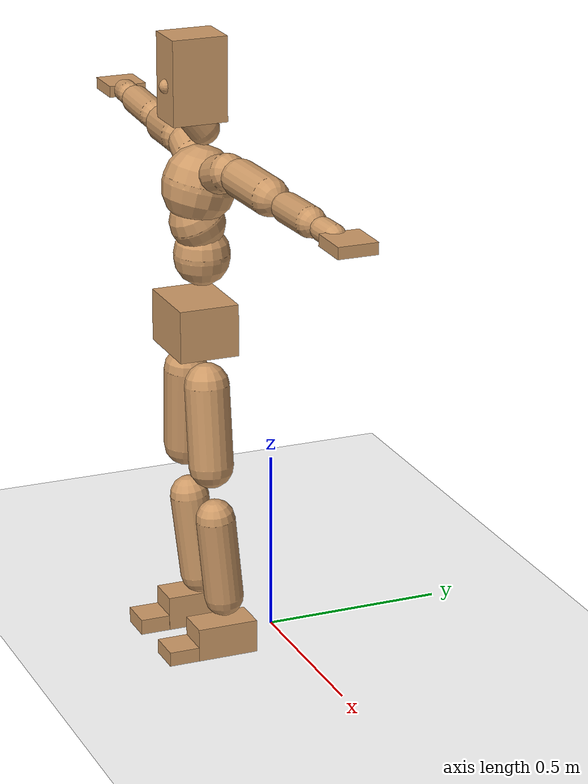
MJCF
<mujoco model="humanoid">
  <option integrator="implicitfast" />

  <visual>
    <global offwidth="1280" offheight="960" />
    <headlight active="1" ambient="0.34 0.34 0.34" diffuse="0.5 0.5 0.5" />
  </visual>

  <default>
    <joint damping="2" stiffness="2" armature="0.01" limited="true" solimplimit="0 .99 .01" />
    <geom condim="1" friction="0.7 0.005 0.0001" solimp=".99 .99 .003" solref="0.015 1" margin="0.001" rgba="0.8 0.6 .4 1" />
    <default class="smplcontact">
      <geom condim="3" friction="1. 0.005 0.0001" solref="0.015 1" solimp="0.98 0.98 0.001" priority="1" />
    </default>
    <default class="stiff_medium">
      <joint stiffness="10" />
    </default>
    <default class="stiff_medium_higher">
      <joint stiffness="50" />
    </default>
    <default class="stiff_high">
      <joint stiffness="100" />
    </default>
  </default>

  <asset>
    <texture type="skybox" builtin="gradient" rgb1="0.99 0.99 0.99" rgb2="0.608 0.828 0.892" width="100" />
    <texture builtin="flat" height="1278" mark="cross" markrgb="1 1 1" name="texgeom" random="0.01" rgb1="0.8 0.6 0.4" rgb2="0.8 0.6 0.4" type="cube" width="127" />
    <texture name="texplane" type="2d" builtin="checker" markrgb="1 1 1" rgb1="0.756 0.772 0.76" rgb2="0.6 0.6 0.6" width="100" height="100" />
    <material name="MatPlane" reflectance="0.5" texture="texplane" texrepeat="1 1" texuniform="true" />
    <material name="geom" texture="texgeom" texuniform="true" />
  </asset>

  <worldbody>
    <light name="tracking_light" pos="0 0 7" dir="0 0 -1" directional="true" cutoff="100" exponent="1" diffuse="1 1 1" specular="0.1 0.1 0.1" mode="trackcom" />
    <camera name="back" pos="0 3 2.4" xyaxes="-1 0 0 0 -1 2" mode="trackcom" />
    <camera name="side" pos="-3 0 2.4" xyaxes="0 -1 0 1 0 2" mode="trackcom" />
    <camera name="front_side" pos="-2.8 -2.8 0.8" xyaxes="0.5 -0.5 0 0.1 0.1 1" mode="trackcom" />
    <geom condim="3" name="floor" pos="0 0 0" rgba="1 1 1 1" size="100 100 .2" type="plane" material="MatPlane" />
    <body name="Pelvis" pos="-0.0018 -0.2233 0.9367" euler="90 0 0">
      <site name="Pelvis" size="0.01" />
      <freejoint name="Pelvis" />
      <geom type="box" pos="-0.0000 -0.0121 -0.0055" size="0.1069 0.0722 0.083" quat="1.0000 0.0000 0.0000 0.0000" density="3165.830099" name="Pelvis" />
      <body name="L_Hip" pos="0.0695 -0.0914 -0.0068">
        <joint name="L_Hip_x" type="hinge" pos="0 0 0" axis="1 0 0" stiffness="10.0" range="-160.0 22.92" class="stiff_medium" damping="14.999999999999998" armature="0.009999999999999998"/>
        <joint name="L_Hip_y" type="hinge" pos="0 0 0" axis="0 1 0" stiffness="10.0" range="-70.0 70.0" class="stiff_medium" damping="10.0" armature="0.01"/>
        <joint name="L_Hip_z" type="hinge" pos="0 0 0" axis="0 0 1" stiffness="10.0" range="-28.65 90.0" class="stiff_medium" damping="9.999999999999998" armature="0.009999999999999998"/>
        <geom type="capsule" density="2040.816327" fromto="0.0069 -0.075 -0.0009 0.0274 -0.3002 -0.0036" size="0.0615" name="L_Hip" />
        <body name="L_Knee" pos="0.0343 -0.3752 -0.0045">
          <joint name="L_Knee_x" type="hinge" pos="0 0 0" axis="1 0 0" range="-5.16 171.89" damping="7.999999999999998" armature="0.009999999999999995" stiffness="2.0"/>
          <joint name="L_Knee_y" type="hinge" pos="0 0 0" axis="0 1 0" range="-4.58 6.88" damping="8.000000000000002" armature="0.010000000000000005" stiffness="2.0"/>
          <joint name="L_Knee_z" type="hinge" pos="0 0 0" axis="0 0 1" range="-6.88 4.58" damping="7.999999999999997" armature="0.009999999999999993" stiffness="2.0"/>
          <geom type="capsule" density="1234.567901" fromto="-0.0027 -0.0796 -0.0087 -0.0109 -0.3184 -0.035" size="0.0541" name="L_Knee" />
          <body name="L_Ankle" pos="-0.0136 -0.398 -0.0437">
            <joint name="L_Ankle_x" type="hinge" pos="0 0 0" axis="1 0 0" range="-45.84 45.84" class="stiff_medium" damping="5.999999999999992" armature="0.009999999999999974" stiffness="10.0"/>
            <joint name="L_Ankle_y" type="hinge" pos="0 0 0" axis="0 1 0" range="-74.48 22.92" class="stiff_medium" damping="3.000000000000001" armature="0.010000000000000005" stiffness="10.0"/>
            <joint name="L_Ankle_z" type="hinge" pos="0 0 0" axis="0 0 1" range="-4.58 4.58" class="stiff_medium" damping="5.9999999999999485" armature="0.009999999999999827" stiffness="10.0"/>
            <geom type="box" pos="0.0233 -0.0239 0.0242" size="0.0483 0.0464 0.085" quat="1.0000 0.0000 0.0000 0.0000" density="449.071558" name="L_Ankle" class="smplcontact" />
            <body name="L_Toe" pos="0.0264 -0.0558 0.1193">
              <joint name="L_Toe_x" type="hinge" pos="0 0 0" axis="1 0 0" range="-91.67 22.92" armature="0.009999999999999487" damping="1.9999999999999487" stiffness="2.0"/>
              <joint name="L_Toe_y" type="hinge" pos="0 0 0" axis="0 1 0" range="-4.58 4.58" armature="0.01" damping="2.0" stiffness="2.0"/>
              <joint name="L_Toe_z" type="hinge" pos="0 0 0" axis="0 0 1" range="-4.58 4.58" armature="0.010000000000000184" damping="2.000000000000018" stiffness="2.0"/>
              <geom type="box" pos="-0.003 0.0055 0.0248" size="0.0478 0.02 0.0496" quat="1.0000 0.0000 0.0000 0.0000" density="423.206892" name="L_Toe" class="smplcontact" />
            </body>
          </body>
        </body>
      </body>
      <body name="R_Hip" pos="-0.0677 -0.0905 -0.0043">
        <joint name="R_Hip_x" type="hinge" pos="0 0 0" axis="1 0 0" stiffness="10.0" range="-160.0 22.92" class="stiff_medium" damping="14.999999999999998" armature="0.009999999999999998"/>
        <joint name="R_Hip_y" type="hinge" pos="0 0 0" axis="0 1 0" stiffness="10.0" range="-70.0 70.0" class="stiff_medium" damping="10.0" armature="0.01"/>
        <joint name="R_Hip_z" type="hinge" pos="0 0 0" axis="0 0 1" stiffness="10.0" range="-90.0 28.65" class="stiff_medium" damping="9.999999999999998" armature="0.009999999999999998"/>
        <geom type="capsule" density="2040.816327" fromto="-0.0077 -0.0765 -0.0018 -0.0306 -0.3061 -0.0071" size="0.0606" name="R_Hip" />
        <body name="R_Knee" pos="-0.0383 -0.3826 -0.0089">
          <joint name="R_Knee_x" type="hinge" pos="0 0 0" axis="1 0 0" range="-5.16 171.89" damping="7.999999999999998" armature="0.009999999999999995" stiffness="2.0"/>
          <joint name="R_Knee_y" type="hinge" pos="0 0 0" axis="0 1 0" range="-6.88 4.58" damping="8.000000000000002" armature="0.010000000000000005" stiffness="2.0"/>
          <joint name="R_Knee_z" type="hinge" pos="0 0 0" axis="0 0 1" range="-4.58 6.88" damping="7.999999999999997" armature="0.009999999999999993" stiffness="2.0"/>
          <geom type="capsule" density="1234.567901" fromto="0.0032 -0.0797 -0.0085 0.0126 -0.3187 -0.0338" size="0.0541" name="R_Knee" />
          <body name="R_Ankle" pos="0.0158 -0.3984 -0.0423">
            <joint name="R_Ankle_x" type="hinge" pos="0 0 0" axis="1 0 0" range="-45.84 45.84" class="stiff_medium" damping="5.999999999999992" armature="0.009999999999999974" stiffness="10.0"/>
            <joint name="R_Ankle_y" type="hinge" pos="0 0 0" axis="0 1 0" range="-22.92 74.48" class="stiff_medium" damping="3.000000000000001" armature="0.010000000000000005" stiffness="10.0"/>
            <joint name="R_Ankle_z" type="hinge" pos="0 0 0" axis="0 0 1" range="-4.58 4.58" class="stiff_medium" damping="5.9999999999999485" armature="0.009999999999999827" stiffness="10.0"/>
            <geom type="box" pos="-0.0212 -0.0174 0.0256" size="0.0483 0.0478 0.0865" quat="1.0000 0.0000 0.0000 0.0000" density="434.700981" name="R_Ankle" class="smplcontact" />
            <body name="R_Toe" pos="-0.0254 -0.0481 0.1233">
              <joint name="R_Toe_x" type="hinge" pos="0 0 0" axis="1 0 0" range="-91.67 22.92" armature="0.009999999999999487" damping="1.9999999999999487" stiffness="2.0"/>
              <joint name="R_Toe_y" type="hinge" pos="0 0 0" axis="0 1 0" range="-4.58 4.58" armature="0.01" damping="2.0" stiffness="2.0"/>
              <joint name="R_Toe_z" type="hinge" pos="0 0 0" axis="0 0 1" range="-4.58 4.58" armature="0.010000000000000184" damping="2.000000000000018" stiffness="2.0"/>
              <geom type="box" pos="0.0042 0.0045 0.0227" size="0.0479 0.0216 0.0493" quat="1.0000 0.0000 0.0000 0.0000" density="407.384095" name="R_Toe" class="smplcontact" />
            </body>
          </body>
        </body>
      </body>
      <body name="Torso" pos="-0.0025 0.109 -0.0267">
        <joint name="Torso_x" type="hinge" pos="0 0 0" axis="1 0 0" range="-25.78 57.3" class="stiff_medium" damping="15.053069587830326" armature="0.01005540911976875" stiffness="10.015390227272727"/>
        <joint name="Torso_y" type="hinge" pos="0 0 0" axis="0 1 0" range="-57.3 57.3" class="stiff_high" damping="20.030199456725096" armature="0.010001201497758674" stiffness="100.29017272727272"/>
        <joint name="Torso_z" type="hinge" pos="0 0 0" axis="0 0 1" range="-34.38 34.38" class="stiff_high" damping="20.048644085562962" armature="0.010037158000749107" stiffness="100.115025"/>
        <geom type="capsule" density="2040.816327" fromto="0.0025 0.0608 0.0005 0.003 0.0743 0.0006" size="0.0769" name="Torso" />
        <body name="Spine" pos="0.0055 0.1352 0.0011">
          <joint name="Spine_x" type="hinge" pos="0 0 0" axis="1 0 0" stiffness="10.027353409090908" range="-25.78 57.3" class="stiff_medium" damping="15.094238746539132" armature="0.010098423738986005"/>
          <joint name="Spine_y" type="hinge" pos="0 0 0" axis="0 1 0" stiffness="10.027070227272727" range="-57.3 57.3" class="stiff_high" damping="8.01127996632614" armature="0.010001146465914634"/>
          <joint name="Spine_z" type="hinge" pos="0 0 0" axis="0 0 1" stiffness="20.061542727272727" range="-34.38 34.38" class="stiff_high" damping="12.046050259237974" armature="0.010045984832547069"/>
          <geom type="capsule" density="2040.816327" fromto="0.0007 0.0238 0.0114 0.0008 0.0291 0.014" size="0.0755" name="Spine" />
          <body name="Chest" pos="0.0015 0.0529 0.0254">
            <joint name="Chest_x" type="hinge" pos="0 0 0" axis="1 0 0" stiffness="10.051994090909094" range="-25.78 57.3" class="stiff_medium" damping="15.131930425612094" armature="0.010124041783141103"/>
            <joint name="Chest_y" type="hinge" pos="0 0 0" axis="0 1 0" stiffness="10.01906409090909" range="-57.3 57.3" class="stiff_high" damping="8.007566832380434" armature="0.009999862199145585"/>
            <joint name="Chest_z" type="hinge" pos="0 0 0" axis="0 0 1" stiffness="20.083234545454545" range="-34.38 34.38" class="stiff_high" damping="12.053605090376637" armature="0.010047725473171756"/>
            <geom type="capsule" density="2040.816327" fromto="-0.0009 0.0682 -0.0173 -0.001 0.0833 -0.0212" size="0.1002" name="Chest" />
            <body name="Neck" pos="-0.0028 0.2139 -0.0429">
              <joint name="Neck_x" type="hinge" pos="0 0 0" axis="1 0 0" range="-28.65 57.3" class="stiff_medium_higher" damping="10.313468896351377" armature="0.010396994026161718" stiffness="51.153073863636365"/>
              <joint name="Neck_y" type="hinge" pos="0 0 0" axis="0 1 0" range="-40.11 40.11" class="stiff_medium_higher" damping="10.197424204323127" armature="0.010160017945892863" stiffness="51.1748409090909"/>
              <joint name="Neck_z" type="hinge" pos="0 0 0" axis="0 0 1" range="-40.11 40.11" class="stiff_medium_higher" damping="10.322317793253102" armature="0.010402437441340028" stiffness="51.21407613636364"/>
              <geom type="capsule" density="1000" fromto="0.001 0.013 0.0103 0.0041 0.052 0.0411" size="0.0436" name="Neck" />
              <body name="Head" pos="0.00533 0.066625 0.0525825">
                <joint name="Head_x" type="hinge" pos="0 0 0" axis="1 0 0" range="-28.65 57.3" class="stiff_medium_higher" damping="2.0528893334510165" armature="0.010278913696090144" stiffness="51.24999999999999"/>
                <joint name="Head_y" type="hinge" pos="0 0 0" axis="0 1 0" range="-40.11 40.11" class="stiff_medium_higher" damping="2.027207004798934" armature="0.010023337171477723" stiffness="51.24999999999999"/>
                <joint name="Head_z" type="hinge" pos="0 0 0" axis="0 0 1" range="-40.11 40.11" class="stiff_medium_higher" damping="2.054152631593999" armature="0.010291568375328177" stiffness="51.24999999999999"/>
                <geom type="box" pos="-0.004305 0.08979 -0.01189" size="0.0606 0.1154 0.076" quat="1.0000 0.0000 0.0000 0.0000" density="1018.069894" name="Head" />
                <geom type="capsule" name="nose" size="0.02 0.01" pos="0 0.07175 0.05125" quat="1 0 0 0" mass="0" contype="0" conaffinity="0" />
              </body>
            </body>
            <body name="L_Thorax" pos="0.0788 0.1217 -0.0341">
              <joint name="L_Thorax_x" type="hinge" pos="0 0 0" axis="1 0 0" range="-10.89 4.58" class="stiff_medium_higher" damping="20.00000000000002" armature="0.010000000000000023" stiffness="50.0"/>
              <joint name="L_Thorax_y" type="hinge" pos="0 0 0" axis="0 1 0" range="-28.65 17.19" class="stiff_medium_higher" damping="20.0" armature="0.010000000000000002" stiffness="50.0"/>
              <joint name="L_Thorax_z" type="hinge" pos="0 0 0" axis="0 0 1" range="-31.51 40.11" class="stiff_medium_higher" damping="19.999999999999996" armature="0.009999999999999998" stiffness="50.0"/>
              <geom type="capsule" density="1000" fromto="0.0182 0.0061 -0.0018 0.0728 0.0244 -0.0071" size="0.0521" name="L_Thorax" />
              <body name="L_Shoulder" pos="0.091 0.0305 -0.0089">
                <joint name="L_Shoulder_x" type="hinge" pos="0 0 0" axis="1 0 0" range="-97.4 97.4" class="stiff_medium" damping="6.0000000000000675" armature="0.010000000000000227" stiffness="10.0"/>
                <joint name="L_Shoulder_y" type="hinge" pos="0 0 0" axis="0 1 0" range="-108.86 80.21" class="stiff_medium" damping="6.0" armature="0.01" stiffness="10.0"/>
                <joint name="L_Shoulder_z" type="hinge" pos="0 0 0" axis="0 0 1" range="-97.4 85.94" class="stiff_medium" damping="6.000000000000002" armature="0.010000000000000005" stiffness="10.0"/>
                <geom type="capsule" density="1000" fromto="0.0519 -0.0026 -0.0055 0.2077 -0.0102 -0.022" size="0.0517" name="L_Shoulder" />
                <body name="L_Elbow" pos="0.2596 -0.0128 -0.0275">
                  <joint name="L_Elbow_x" type="hinge" pos="0 0 0" axis="1 0 0" range="-17.19 4.58" damping="4.999999999999936" armature="0.009999999999999745" stiffness="2.0"/>
                  <joint name="L_Elbow_y" type="hinge" pos="0 0 0" axis="0 1 0" range="-180.0 17.19" damping="5.000000000000002" armature="0.010000000000000009" stiffness="2.0"/>
                  <joint name="L_Elbow_z" type="hinge" pos="0 0 0" axis="0 0 1" range="-100.84 4.58" damping="4.999999999999999" armature="0.009999999999999998" stiffness="2.0"/>
                  <geom type="capsule" density="1000" fromto="0.0498 0.0018 -0.0002 0.1994 0.0072 -0.0009" size="0.0405" name="L_Elbow" />
                  <body name="L_Wrist" pos="0.2492 0.009 -0.0012">
                    <joint name="L_Wrist_x" type="hinge" pos="0 0 0" axis="1 0 0" range="-180.0 22.92" armature="0.009999999999999702" damping="1.9999999999999702" stiffness="2.0"/>
                    <joint name="L_Wrist_y" type="hinge" pos="0 0 0" axis="0 1 0" range="-17.19 17.19" armature="0.009999999999999848" damping="1.9999999999999847" stiffness="2.0"/>
                    <joint name="L_Wrist_z" type="hinge" pos="0 0 0" axis="0 0 1" range="-22.92 22.92" armature="0.009999999999999924" damping="1.9999999999999925" stiffness="2.0"/>
                    <geom type="capsule" density="1000" fromto="0.0168 -0.0016 -0.003 0.0672 -0.0065 -0.012" size="0.0318" name="L_Wrist" class="smplcontact" />
                    <body name="L_Hand" pos="0.084 -0.0082 -0.0149">
                      <joint name="L_Hand_x" type="hinge" pos="0 0 0" axis="1 0 0" range="-17.19 17.19" armature="0.009999999999999419" damping="1.9999999999999418" stiffness="2.0"/>
                      <joint name="L_Hand_y" type="hinge" pos="0 0 0" axis="0 1 0" range="-51.57 51.57" armature="0.010000000000000299" damping="2.0000000000000298" stiffness="2.0"/>
                      <joint name="L_Hand_z" type="hinge" pos="0 0 0" axis="0 0 1" range="-91.67 91.67" armature="0.010000000000000508" damping="2.0000000000000506" stiffness="2.0"/>
                      <geom type="box" pos="0.0493 0.001 -0.0058" size="0.0585 0.0158 0.0538" quat="1.0000 0.0000 0.0000 0.0000" density="400.552564" name="L_Hand" class="smplcontact" />
                    </body>
                  </body>
                </body>
              </body>
            </body>
            <body name="R_Thorax" pos="-0.0818 0.1188 -0.0386">
              <joint name="R_Thorax_x" type="hinge" pos="0 0 0" axis="1 0 0" range="-10.89 4.58" class="stiff_medium_higher" damping="20.00000000000002" armature="0.010000000000000023" stiffness="50.0"/>
              <joint name="R_Thorax_y" type="hinge" pos="0 0 0" axis="0 1 0" range="-17.19 28.65" class="stiff_medium_higher" damping="20.0" armature="0.010000000000000002" stiffness="50.0"/>
              <joint name="R_Thorax_z" type="hinge" pos="0 0 0" axis="0 0 1" range="-40.11 31.51" class="stiff_medium_higher" damping="19.999999999999996" armature="0.009999999999999998" stiffness="50.0"/>
              <geom type="capsule" density="1000" fromto="-0.0192 0.0065 -0.0018 -0.0768 0.026 -0.0073" size="0.0511" name="R_Thorax" />
              <body name="R_Shoulder" pos="-0.096 0.0326 -0.0091">
                <joint name="R_Shoulder_x" type="hinge" pos="0 0 0" axis="1 0 0" range="-97.4 97.4" class="stiff_medium" damping="6.0000000000000675" armature="0.010000000000000227" stiffness="10.0"/>
                <joint name="R_Shoulder_y" type="hinge" pos="0 0 0" axis="0 1 0" range="-80.21 108.86" class="stiff_medium" damping="6.0" armature="0.01" stiffness="10.0"/>
                <joint name="R_Shoulder_z" type="hinge" pos="0 0 0" axis="0 0 1" range="-85.94 97.4" class="stiff_medium" damping="6.000000000000002" armature="0.010000000000000005" stiffness="10.0"/>
                <geom type="capsule" density="1000" fromto="-0.0507 -0.0027 -0.0043 -0.203 -0.0107 -0.0171" size="0.0531" name="R_Shoulder" />
                <body name="R_Elbow" pos="-0.2537 -0.0133 -0.0214">
                  <joint name="R_Elbow_x" type="hinge" pos="0 0 0" axis="1 0 0" range="-17.19 4.58" damping="4.999999999999936" armature="0.009999999999999745" stiffness="2.0"/>
                  <joint name="R_Elbow_y" type="hinge" pos="0 0 0" axis="0 1 0" range="-17.19 180.0" damping="5.000000000000002" armature="0.010000000000000009" stiffness="2.0"/>
                  <joint name="R_Elbow_z" type="hinge" pos="0 0 0" axis="0 0 1" range="-4.58 100.84" damping="4.999999999999999" armature="0.009999999999999998" stiffness="2.0"/>
                  <geom type="capsule" density="1000" fromto="-0.0511 0.0016 -0.0011 -0.2042 0.0062 -0.0044" size="0.0408" name="R_Elbow" />
                  <body name="R_Wrist" pos="-0.2553 0.0078 -0.0056">
                    <joint name="R_Wrist_x" type="hinge" pos="0 0 0" axis="1 0 0" range="-180.0 22.92" armature="0.009999999999999702" damping="1.9999999999999702" stiffness="2.0"/>
                    <joint name="R_Wrist_y" type="hinge" pos="0 0 0" axis="0 1 0" range="-17.19 17.19" armature="0.009999999999999848" damping="1.9999999999999847" stiffness="2.0"/>
                    <joint name="R_Wrist_z" type="hinge" pos="0 0 0" axis="0 0 1" range="-22.92 22.92" armature="0.009999999999999924" damping="1.9999999999999925" stiffness="2.0"/>
                    <geom type="capsule" density="1000" fromto="-0.0169 -0.0012 -0.0021 -0.0677 -0.0049 -0.0083" size="0.0326" name="R_Wrist" class="smplcontact" />
                    <body name="R_Hand" pos="-0.0846 -0.0061 -0.0103">
                      <joint name="R_Hand_x" type="hinge" pos="0 0 0" axis="1 0 0" range="-17.19 17.19" armature="0.009999999999999419" damping="1.9999999999999418" stiffness="2.0"/>
                      <joint name="R_Hand_y" type="hinge" pos="0 0 0" axis="0 1 0" range="-51.57 51.57" armature="0.010000000000000299" damping="2.0000000000000298" stiffness="2.0"/>
                      <joint name="R_Hand_z" type="hinge" pos="0 0 0" axis="0 0 1" range="-91.67 91.67" armature="0.010000000000000508" damping="2.0000000000000506" stiffness="2.0"/>
                      <geom type="box" pos="-0.0462 -0.0009 -0.0079" size="0.0569 0.0164 0.0546" quat="1.0000 0.0000 0.0000 0.0000" density="403.679611" name="R_Hand" class="smplcontact" />
                    </body>
                  </body>
                </body>
              </body>
            </body>
          </body>
        </body>
      </body>
    </body>
  </worldbody>
  <actuator>
    <general name="L_Hip_x" joint="L_Hip_x" biastype="affine" gainprm="287.33006409732246" biasprm="-215.3247604770444 -180.0 -1.9999999999999998" ctrllimited="true" ctrlrange="-1 1" forcerange="-360.0 360.0" />
    <general name="L_Hip_y" joint="L_Hip_y" biastype="affine" gainprm="219.9114857512855" biasprm="0.0 -180.0 -2.0" ctrllimited="true" ctrlrange="-1 1" forcerange="-360.0 360.0" />
    <general name="L_Hip_z" joint="L_Hip_z" biastype="affine" gainprm="186.3749841742145" biasprm="96.3683546488669 -180.0 -1.9999999999999998" ctrllimited="true" ctrlrange="-1 1" forcerange="-360.0 360.0" />
    <general name="L_Knee_x" joint="L_Knee_x" biastype="affine" gainprm="278.10948965903646" biasprm="261.8988715665131 -180.0 -1.9999999999999996" ctrllimited="true" ctrlrange="-1 1" forcerange="-360.0 360.0" />
    <general name="L_Knee_y" joint="L_Knee_y" biastype="affine" gainprm="18.001325905069514" biasprm="3.612831551628262 -180.0 -2.0000000000000004" ctrllimited="true" ctrlrange="-1 1" forcerange="-360.0 360.0" />
    <general name="L_Knee_z" joint="L_Knee_z" biastype="affine" gainprm="18.001325905069514" biasprm="-3.612831551628262 -180.0 -1.9999999999999993" ctrllimited="true" ctrlrange="-1 1" forcerange="-360.0 360.0" />
    <general name="L_Ankle_x" joint="L_Ankle_x" biastype="affine" gainprm="72.00530362027807" biasprm="0.0 -90.0 -1.9999999999999973" ctrllimited="true" ctrlrange="-1 1" forcerange="-180.0 180.0" />
    <general name="L_Ankle_y" joint="L_Ankle_y" biastype="affine" gainprm="76.49778111491148" biasprm="-40.49512930477244 -90.0 -2.0000000000000004" ctrllimited="true" ctrlrange="-1 1" forcerange="-180.0 180.0" />
    <general name="L_Ankle_z" joint="L_Ankle_z" biastype="affine" gainprm="7.1942471767206255" biasprm="0.0 -90.0 -1.9999999999999827" ctrllimited="true" ctrlrange="-1 1" forcerange="-180.0 180.0" />
    <general name="L_Toe_x" joint="L_Toe_x" biastype="affine" gainprm="71.99902043497087" biasprm="-43.19689898685965 -72.0 -0.7999999999999795" ctrllimited="true" ctrlrange="-1 1" forcerange="-144.0 144.0" />
    <general name="L_Toe_y" joint="L_Toe_y" biastype="affine" gainprm="5.755397741376501" biasprm="0.0 -72.0 -0.8" ctrllimited="true" ctrlrange="-1 1" forcerange="-144.0 144.0" />
    <general name="L_Toe_z" joint="L_Toe_z" biastype="affine" gainprm="5.755397741376501" biasprm="0.0 -72.0 -0.8000000000000074" ctrllimited="true" ctrlrange="-1 1" forcerange="-144.0 144.0" />
    <general name="R_Hip_x" joint="R_Hip_x" biastype="affine" gainprm="287.33006409732246" biasprm="-215.3247604770444 -180.0 -1.9999999999999998" ctrllimited="true" ctrlrange="-1 1" forcerange="-360.0 360.0" />
    <general name="R_Hip_y" joint="R_Hip_y" biastype="affine" gainprm="219.9114857512855" biasprm="0.0 -180.0 -2.0" ctrllimited="true" ctrlrange="-1 1" forcerange="-360.0 360.0" />
    <general name="R_Hip_z" joint="R_Hip_z" biastype="affine" gainprm="186.3749841742145" biasprm="-96.3683546488669 -180.0 -1.9999999999999998" ctrllimited="true" ctrlrange="-1 1" forcerange="-360.0 360.0" />
    <general name="R_Knee_x" joint="R_Knee_x" biastype="affine" gainprm="278.10948965903646" biasprm="261.8988715665131 -180.0 -1.9999999999999996" ctrllimited="true" ctrlrange="-1 1" forcerange="-360.0 360.0" />
    <general name="R_Knee_y" joint="R_Knee_y" biastype="affine" gainprm="18.001325905069514" biasprm="-3.612831551628262 -180.0 -2.0000000000000004" ctrllimited="true" ctrlrange="-1 1" forcerange="-360.0 360.0" />
    <general name="R_Knee_z" joint="R_Knee_z" biastype="affine" gainprm="18.001325905069514" biasprm="3.612831551628262 -180.0 -1.9999999999999993" ctrllimited="true" ctrlrange="-1 1" forcerange="-360.0 360.0" />
    <general name="R_Ankle_x" joint="R_Ankle_x" biastype="affine" gainprm="72.00530362027807" biasprm="0.0 -90.0 -1.9999999999999973" ctrllimited="true" ctrlrange="-1 1" forcerange="-180.0 180.0" />
    <general name="R_Ankle_y" joint="R_Ankle_y" biastype="affine" gainprm="76.49778111491148" biasprm="40.49512930477244 -90.0 -2.0000000000000004" ctrllimited="true" ctrlrange="-1 1" forcerange="-180.0 180.0" />
    <general name="R_Ankle_z" joint="R_Ankle_z" biastype="affine" gainprm="7.1942471767206255" biasprm="0.0 -90.0 -1.9999999999999827" ctrllimited="true" ctrlrange="-1 1" forcerange="-180.0 180.0" />
    <general name="R_Toe_x" joint="R_Toe_x" biastype="affine" gainprm="71.99902043497087" biasprm="-43.19689898685965 -72.0 -0.7999999999999795" ctrllimited="true" ctrlrange="-1 1" forcerange="-144.0 144.0" />
    <general name="R_Toe_y" joint="R_Toe_y" biastype="affine" gainprm="5.755397741376501" biasprm="0.0 -72.0 -0.8" ctrllimited="true" ctrlrange="-1 1" forcerange="-144.0 144.0" />
    <general name="R_Toe_z" joint="R_Toe_z" biastype="affine" gainprm="5.755397741376501" biasprm="0.0 -72.0 -0.8000000000000074" ctrllimited="true" ctrlrange="-1 1" forcerange="-144.0 144.0" />
    <general name="Torso_x" joint="Torso_x" biastype="affine" gainprm="174.27013867054484" biasprm="66.11693272623461 -240.36936545454546 -4.014151890088087" ctrllimited="true" ctrlrange="-1 1" forcerange="-360.5540481818182 360.5540481818182" />
    <general name="Torso_y" joint="Torso_y" biastype="affine" gainprm="240.71414457858006" biasprm="0.0 -240.69641454545453 -4.0060398913450195" ctrllimited="true" ctrlrange="-1 1" forcerange="-361.0446218181818 361.0446218181818" />
    <general name="Torso_z" joint="Torso_z" biastype="affine" gainprm="144.17625544153458" biasprm="0.0 -240.27606 -4.009728817112593" ctrllimited="true" ctrlrange="-1 1" forcerange="-360.41409 360.41409" />
    <general name="Spine_x" joint="Spine_x" biastype="affine" gainprm="174.47830083967514" biasprm="66.1959080701319 -240.65648181818182 -4.025130332410435" ctrllimited="true" ctrlrange="-1 1" forcerange="-360.9847227272727 360.9847227272727" />
    <general name="Spine_y" joint="Spine_y" biastype="affine" gainprm="240.66741204554108" biasprm="0.0 -240.64968545454545 -4.00563998316307" ctrllimited="true" ctrlrange="-1 1" forcerange="-360.9745281818182 360.9745281818182" />
    <general name="Spine_z" joint="Spine_z" biastype="affine" gainprm="144.45374751684543" biasprm="0.0 -240.73851272727273 -4.015350086412658" ctrllimited="true" ctrlrange="-1 1" forcerange="-361.1077690909091 361.1077690909091" />
    <general name="Chest_x" joint="Chest_x" biastype="affine" gainprm="174.90705448181467" biasprm="66.3585743532354 -241.24785818181823 -4.035181446829892" ctrllimited="true" ctrlrange="-1 1" forcerange="-361.8717872727274 361.8717872727274" />
    <general name="Chest_y" joint="Chest_y" biastype="affine" gainprm="240.4752506189781" biasprm="0.0 -240.4575381818182 -4.003783416190217" ctrllimited="true" ctrlrange="-1 1" forcerange="-360.6863072727273 360.6863072727273" />
    <general name="Chest_z" joint="Chest_z" biastype="affine" gainprm="144.60994011227118" biasprm="0.0 -240.99881454545454 -4.017868363458879" ctrllimited="true" ctrlrange="-1 1" forcerange="-361.49822181818183 361.49822181818183" />
    <general name="Neck_x" joint="Neck_x" biastype="affine" gainprm="27.624694609962347" biasprm="9.208231536654116 -36.83021318181818 -0.8250775117081102" ctrllimited="true" ctrlrange="-1 1" forcerange="-73.66042636363636 73.66042636363636" />
    <general name="Neck_y" joint="Neck_y" biastype="affine" gainprm="25.794019701649617" biasprm="0.0 -36.84588545454545 -0.8157939363458502" ctrllimited="true" ctrlrange="-1 1" forcerange="-73.6917709090909 73.6917709090909" />
    <general name="Neck_z" joint="Neck_z" biastype="affine" gainprm="25.813795712816304" biasprm="0.0 -36.87413481818182 -0.8257854234602482" ctrllimited="true" ctrlrange="-1 1" forcerange="-73.74826963636364 73.74826963636364" />
    <general name="Head_x" joint="Head_x" biastype="affine" gainprm="18.45135905269625" biasprm="6.150453017565416 -24.599999999999998 -0.8211557333804067" ctrllimited="true" ctrlrange="-1 1" forcerange="-49.199999999999996 49.199999999999996" />
    <general name="Head_y" joint="Head_y" biastype="affine" gainprm="17.221268449183167" biasprm="0.0 -24.599999999999998 -0.8108828019195736" ctrllimited="true" ctrlrange="-1 1" forcerange="-49.199999999999996 49.199999999999996" />
    <general name="Head_z" joint="Head_z" biastype="affine" gainprm="17.221268449183167" biasprm="0.0 -24.599999999999998 -0.8216610526375997" ctrllimited="true" ctrlrange="-1 1" forcerange="-49.199999999999996 49.199999999999996" />
    <general name="L_Thorax_x" joint="L_Thorax_x" biastype="affine" gainprm="16.200146117011364" biasprm="-6.6078165480505335 -120.0 -1.6000000000000019" ctrllimited="true" ctrlrange="-1 1" forcerange="-240.0 240.0" />
    <general name="L_Thorax_y" joint="L_Thorax_y" biastype="affine" gainprm="48.00353574685204" biasprm="-12.00088393671301 -120.0 -1.6" ctrllimited="true" ctrlrange="-1 1" forcerange="-240.0 240.0" />
    <general name="L_Thorax_z" joint="L_Thorax_z" biastype="affine" gainprm="75.00028861670033" biasprm="9.00589894029074 -120.0 -1.5999999999999999" ctrllimited="true" ctrlrange="-1 1" forcerange="-240.0 240.0" />
    <general name="L_Shoulder_x" joint="L_Shoulder_x" biastype="affine" gainprm="81.5976331892389" biasprm="0.0 -48.0 -1.6000000000000183" ctrllimited="true" ctrlrange="-1 1" forcerange="-96.0 96.0" />
    <general name="L_Shoulder_y" joint="L_Shoulder_y" biastype="affine" gainprm="79.19745640189629" biasprm="-12.00088393671301 -48.0 -1.6" ctrllimited="true" ctrlrange="-1 1" forcerange="-96.0 96.0" />
    <general name="L_Shoulder_z" joint="L_Shoulder_z" biastype="affine" gainprm="76.79727961455369" biasprm="-4.800353574685214 -48.0 -1.6000000000000005" ctrllimited="true" ctrlrange="-1 1" forcerange="-96.0 96.0" />
    <general name="L_Elbow_x" joint="L_Elbow_x" biastype="affine" gainprm="13.67849441372996" biasprm="-7.923096672353461 -72.0 -0.7999999999999898" ctrllimited="true" ctrlrange="-1 1" forcerange="-144.0 144.0" />
    <general name="L_Elbow_y" joint="L_Elbow_y" biastype="affine" gainprm="123.89813107227425" biasprm="-102.29653998619085 -72.0 -0.8000000000000004" ctrllimited="true" ctrlrange="-1 1" forcerange="-144.0 144.0" />
    <general name="L_Elbow_z" joint="L_Elbow_z" biastype="affine" gainprm="66.23733950828719" biasprm="-60.4819417669107 -72.0 -0.7999999999999999" ctrllimited="true" ctrlrange="-1 1" forcerange="-144.0 144.0" />
    <general name="L_Wrist_x" joint="L_Wrist_x" biastype="affine" gainprm="21.24973270888136" biasprm="-16.449379134196157 -12.0 -0.7999999999999882" ctrllimited="true" ctrlrange="-1 1" forcerange="-24.0 24.0" />
    <general name="L_Wrist_y" joint="L_Wrist_y" biastype="affine" gainprm="3.6002651810139037" biasprm="0.0 -12.0 -0.7999999999999939" ctrllimited="true" ctrlrange="-1 1" forcerange="-24.0 24.0" />
    <general name="L_Wrist_z" joint="L_Wrist_z" biastype="affine" gainprm="4.800353574685205" biasprm="0.0 -12.0 -0.799999999999997" ctrllimited="true" ctrlrange="-1 1" forcerange="-24.0 24.0" />
    <general name="L_Hand_x" joint="L_Hand_x" biastype="affine" gainprm="3.6002651810139037" biasprm="0.0 -12.0 -0.7999999999999767" ctrllimited="true" ctrlrange="-1 1" forcerange="-24.0 24.0" />
    <general name="L_Hand_y" joint="L_Hand_y" biastype="affine" gainprm="10.800795543041708" biasprm="0.0 -12.0 -0.8000000000000119" ctrllimited="true" ctrlrange="-1 1" forcerange="-24.0 24.0" />
    <general name="L_Hand_z" joint="L_Hand_z" biastype="affine" gainprm="19.199319903638422" biasprm="0.0 -12.0 -0.8000000000000203" ctrllimited="true" ctrlrange="-1 1" forcerange="-24.0 24.0" />
    <general name="R_Thorax_x" joint="R_Thorax_x" biastype="affine" gainprm="16.200146117011364" biasprm="-6.6078165480505335 -120.0 -1.6000000000000019" ctrllimited="true" ctrlrange="-1 1" forcerange="-240.0 240.0" />
    <general name="R_Thorax_y" joint="R_Thorax_y" biastype="affine" gainprm="48.00353574685204" biasprm="12.000883936713002 -120.0 -1.6" ctrllimited="true" ctrlrange="-1 1" forcerange="-240.0 240.0" />
    <general name="R_Thorax_z" joint="R_Thorax_z" biastype="affine" gainprm="75.00028861670033" biasprm="-9.00589894029074 -120.0 -1.5999999999999999" ctrllimited="true" ctrlrange="-1 1" forcerange="-240.0 240.0" />
    <general name="R_Shoulder_x" joint="R_Shoulder_x" biastype="affine" gainprm="81.5976331892389" biasprm="0.0 -48.0 -1.6000000000000183" ctrllimited="true" ctrlrange="-1 1" forcerange="-96.0 96.0" />
    <general name="R_Shoulder_y" joint="R_Shoulder_y" biastype="affine" gainprm="79.19745640189629" biasprm="12.00088393671301 -48.0 -1.6" ctrllimited="true" ctrlrange="-1 1" forcerange="-96.0 96.0" />
    <general name="R_Shoulder_z" joint="R_Shoulder_z" biastype="affine" gainprm="76.79727961455369" biasprm="4.800353574685204 -48.0 -1.6000000000000005" ctrllimited="true" ctrlrange="-1 1" forcerange="-96.0 96.0" />
    <general name="R_Elbow_x" joint="R_Elbow_x" biastype="affine" gainprm="13.67849441372996" biasprm="-7.923096672353461 -72.0 -0.7999999999999898" ctrllimited="true" ctrlrange="-1 1" forcerange="-144.0 144.0" />
    <general name="R_Elbow_y" joint="R_Elbow_y" biastype="affine" gainprm="123.89813107227425" biasprm="102.29653998619085 -72.0 -0.8000000000000004" ctrllimited="true" ctrlrange="-1 1" forcerange="-144.0 144.0" />
    <general name="R_Elbow_z" joint="R_Elbow_z" biastype="affine" gainprm="66.23733950828719" biasprm="60.481941766910694 -72.0 -0.7999999999999999" ctrllimited="true" ctrlrange="-1 1" forcerange="-144.0 144.0" />
    <general name="R_Wrist_x" joint="R_Wrist_x" biastype="affine" gainprm="21.24973270888136" biasprm="-16.449379134196157 -12.0 -0.7999999999999882" ctrllimited="true" ctrlrange="-1 1" forcerange="-24.0 24.0" />
    <general name="R_Wrist_y" joint="R_Wrist_y" biastype="affine" gainprm="3.6002651810139037" biasprm="0.0 -12.0 -0.7999999999999939" ctrllimited="true" ctrlrange="-1 1" forcerange="-24.0 24.0" />
    <general name="R_Wrist_z" joint="R_Wrist_z" biastype="affine" gainprm="4.800353574685205" biasprm="0.0 -12.0 -0.799999999999997" ctrllimited="true" ctrlrange="-1 1" forcerange="-24.0 24.0" />
    <general name="R_Hand_x" joint="R_Hand_x" biastype="affine" gainprm="3.6002651810139037" biasprm="0.0 -12.0 -0.7999999999999767" ctrllimited="true" ctrlrange="-1 1" forcerange="-24.0 24.0" />
    <general name="R_Hand_y" joint="R_Hand_y" biastype="affine" gainprm="10.800795543041708" biasprm="0.0 -12.0 -0.8000000000000119" ctrllimited="true" ctrlrange="-1 1" forcerange="-24.0 24.0" />
    <general name="R_Hand_z" joint="R_Hand_z" biastype="affine" gainprm="19.199319903638422" biasprm="0.0 -12.0 -0.8000000000000203" ctrllimited="true" ctrlrange="-1 1" forcerange="-24.0 24.0" />
  </actuator>
  <contact>
    <exclude body1="Torso" body2="Chest" />
    <exclude body1="Head" body2="Chest" />
    <exclude body1="R_Knee" body2="R_Toe" />
    <exclude body1="R_Knee" body2="L_Ankle" />
    <exclude body1="R_Knee" body2="L_Toe" />
    <exclude body1="L_Knee" body2="L_Toe" />
    <exclude body1="L_Knee" body2="R_Ankle" />
    <exclude body1="L_Knee" body2="R_Toe" />
    <exclude body1="L_Shoulder" body2="Chest" />
    <exclude body1="R_Shoulder" body2="Chest" />
  </contact>
  <sensor>
    <framelinvel name="sensor_Pelvis_framelinvel" objtype="xbody" objname="Pelvis" />
    <framelinvel name="sensor_L_Hip_framelinvel" objtype="xbody" objname="L_Hip" />
    <framelinvel name="sensor_L_Knee_framelinvel" objtype="xbody" objname="L_Knee" />
    <framelinvel name="sensor_L_Ankle_framelinvel" objtype="xbody" objname="L_Ankle" />
    <framelinvel name="sensor_L_Toe_framelinvel" objtype="xbody" objname="L_Toe" />
    <framelinvel name="sensor_R_Hip_framelinvel" objtype="xbody" objname="R_Hip" />
    <framelinvel name="sensor_R_Knee_framelinvel" objtype="xbody" objname="R_Knee" />
    <framelinvel name="sensor_R_Ankle_framelinvel" objtype="xbody" objname="R_Ankle" />
    <framelinvel name="sensor_R_Toe_framelinvel" objtype="xbody" objname="R_Toe" />
    <framelinvel name="sensor_Torso_framelinvel" objtype="xbody" objname="Torso" />
    <framelinvel name="sensor_Spine_framelinvel" objtype="xbody" objname="Spine" />
    <framelinvel name="sensor_Chest_framelinvel" objtype="xbody" objname="Chest" />
    <framelinvel name="sensor_Neck_framelinvel" objtype="xbody" objname="Neck" />
    <framelinvel name="sensor_Head_framelinvel" objtype="xbody" objname="Head" />
    <framelinvel name="sensor_L_Thorax_framelinvel" objtype="xbody" objname="L_Thorax" />
    <framelinvel name="sensor_L_Shoulder_framelinvel" objtype="xbody" objname="L_Shoulder" />
    <framelinvel name="sensor_L_Elbow_framelinvel" objtype="xbody" objname="L_Elbow" />
    <framelinvel name="sensor_L_Wrist_framelinvel" objtype="xbody" objname="L_Wrist" />
    <framelinvel name="sensor_L_Hand_framelinvel" objtype="xbody" objname="L_Hand" />
    <framelinvel name="sensor_R_Thorax_framelinvel" objtype="xbody" objname="R_Thorax" />
    <framelinvel name="sensor_R_Shoulder_framelinvel" objtype="xbody" objname="R_Shoulder" />
    <framelinvel name="sensor_R_Elbow_framelinvel" objtype="xbody" objname="R_Elbow" />
    <framelinvel name="sensor_R_Wrist_framelinvel" objtype="xbody" objname="R_Wrist" />
    <framelinvel name="sensor_R_Hand_framelinvel" objtype="xbody" objname="R_Hand" />
    <frameangvel name="sensor_Pelvis_frameangvel" objtype="xbody" objname="Pelvis" />
    <frameangvel name="sensor_L_Hip_frameangvel" objtype="xbody" objname="L_Hip" />
    <frameangvel name="sensor_L_Knee_frameangvel" objtype="xbody" objname="L_Knee" />
    <frameangvel name="sensor_L_Ankle_frameangvel" objtype="xbody" objname="L_Ankle" />
    <frameangvel name="sensor_L_Toe_frameangvel" objtype="xbody" objname="L_Toe" />
    <frameangvel name="sensor_R_Hip_frameangvel" objtype="xbody" objname="R_Hip" />
    <frameangvel name="sensor_R_Knee_frameangvel" objtype="xbody" objname="R_Knee" />
    <frameangvel name="sensor_R_Ankle_frameangvel" objtype="xbody" objname="R_Ankle" />
    <frameangvel name="sensor_R_Toe_frameangvel" objtype="xbody" objname="R_Toe" />
    <frameangvel name="sensor_Torso_frameangvel" objtype="xbody" objname="Torso" />
    <frameangvel name="sensor_Spine_frameangvel" objtype="xbody" objname="Spine" />
    <frameangvel name="sensor_Chest_frameangvel" objtype="xbody" objname="Chest" />
    <frameangvel name="sensor_Neck_frameangvel" objtype="xbody" objname="Neck" />
    <frameangvel name="sensor_Head_frameangvel" objtype="xbody" objname="Head" />
    <frameangvel name="sensor_L_Thorax_frameangvel" objtype="xbody" objname="L_Thorax" />
    <frameangvel name="sensor_L_Shoulder_frameangvel" objtype="xbody" objname="L_Shoulder" />
    <frameangvel name="sensor_L_Elbow_frameangvel" objtype="xbody" objname="L_Elbow" />
    <frameangvel name="sensor_L_Wrist_frameangvel" objtype="xbody" objname="L_Wrist" />
    <frameangvel name="sensor_L_Hand_frameangvel" objtype="xbody" objname="L_Hand" />
    <frameangvel name="sensor_R_Thorax_frameangvel" objtype="xbody" objname="R_Thorax" />
    <frameangvel name="sensor_R_Shoulder_frameangvel" objtype="xbody" objname="R_Shoulder" />
    <frameangvel name="sensor_R_Elbow_frameangvel" objtype="xbody" objname="R_Elbow" />
    <frameangvel name="sensor_R_Wrist_frameangvel" objtype="xbody" objname="R_Wrist" />
    <frameangvel name="sensor_R_Hand_frameangvel" objtype="xbody" objname="R_Hand" />
    <subtreelinvel name="Chest_subtreelinvel" body="Chest" />
    <gyro name="Pelvis_gyro" site="Pelvis" />
  </sensor>
</mujoco>
